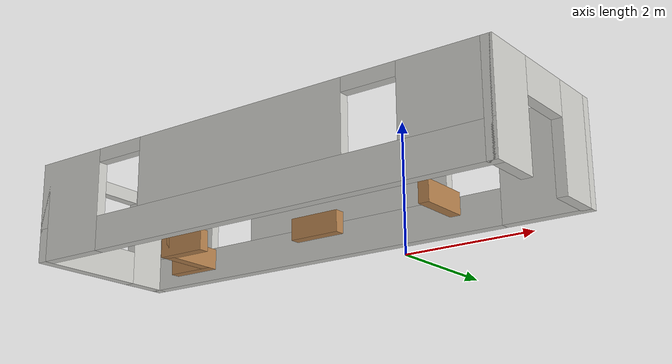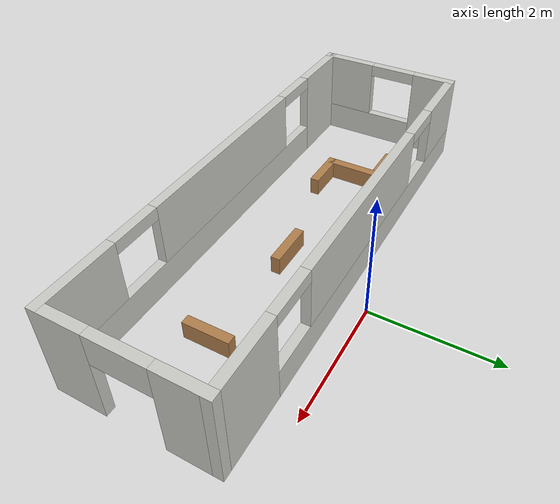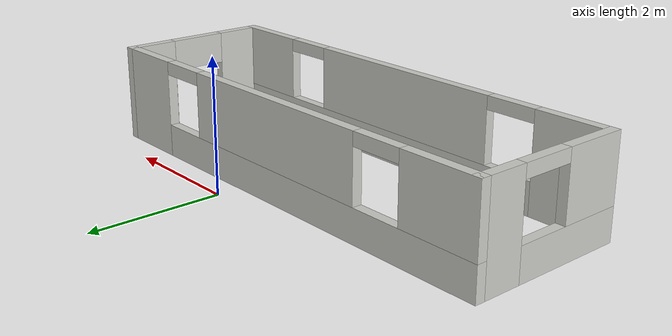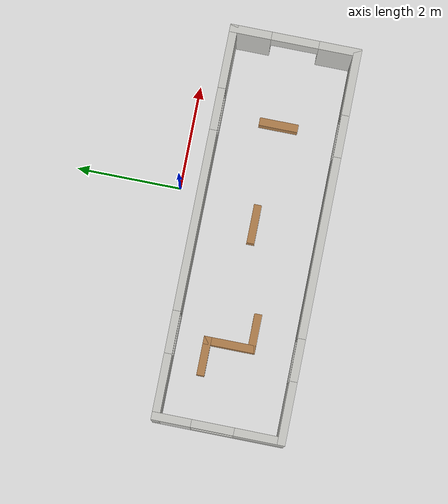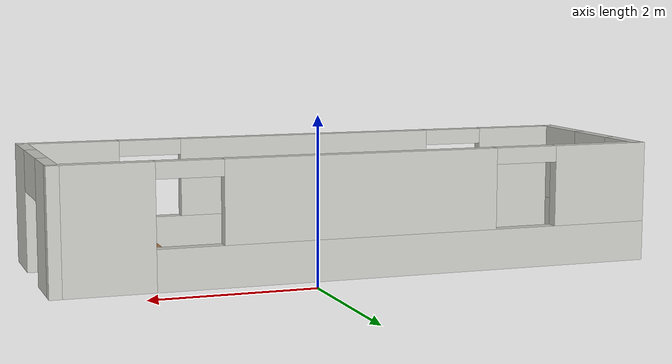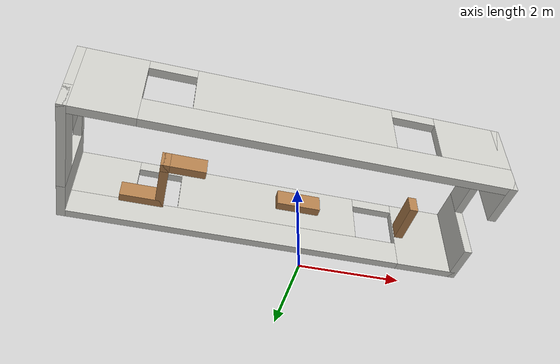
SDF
<?xml version='1.0'?>
<sdf version='1.6'>
  <model name='robot_world2'>
    <pose frame=''>-0.725 -1.615 0 0 -0 0</pose>
    <link name='Wall_0'>
      <pose frame=''>-3.675 0 0 0 -0 -1.5708</pose>
      <visual name='Wall_0_Visual_0'>
        <pose frame=''>-0.8825 0 0.75 0 -0 0</pose>
        <geometry>
          <box>
            <size>0.735 0.15 1.5</size>
          </box>
        </geometry>
        <material>
          <script>
            <uri>file://media/materials/scripts/gazebo.material</uri>
            <name>Gazebo/CeilingTiled</name>
          </script>
          <ambient>0 1 0 1</ambient>
        </material>
        <meta>
          <layer>0</layer>
        </meta>
      </visual>
      <collision name='Wall_0_Collision_0'>
        <geometry>
          <box>
            <size>0.735 0.15 1.5</size>
          </box>
        </geometry>
        <pose frame=''>-0.8825 0 0.75 0 -0 0</pose>
      </collision>
      <visual name='Wall_0_Visual_1'>
        <pose frame=''>0.3675 0 0.25 0 -0 0</pose>
        <geometry>
          <box>
            <size>1.765 0.15 0.5</size>
          </box>
        </geometry>
        <material>
          <script>
            <uri>file://media/materials/scripts/gazebo.material</uri>
            <name>Gazebo/CeilingTiled</name>
          </script>
          <ambient>0 1 0 1</ambient>
        </material>
        <meta>
          <layer>0</layer>
        </meta>
      </visual>
      <collision name='Wall_0_Collision_1'>
        <geometry>
          <box>
            <size>1.765 0.15 0.5</size>
          </box>
        </geometry>
        <pose frame=''>0.3675 0 0.25 0 -0 0</pose>
      </collision>
      <visual name='Wall_0_Visual_2'>
        <pose frame=''>0.7675 0 1 0 -0 0</pose>
        <geometry>
          <box>
            <size>0.965 0.15 1</size>
          </box>
        </geometry>
        <material>
          <script>
            <uri>file://media/materials/scripts/gazebo.material</uri>
            <name>Gazebo/CeilingTiled</name>
          </script>
          <ambient>0 1 0 1</ambient>
        </material>
        <meta>
          <layer>0</layer>
        </meta>
      </visual>
      <collision name='Wall_0_Collision_2'>
        <geometry>
          <box>
            <size>0.965 0.15 1</size>
          </box>
        </geometry>
        <pose frame=''>0.7675 0 1 0 -0 0</pose>
      </collision>
      <visual name='Wall_0_Visual_3'>
        <pose frame=''>-0.115 0 1.4 0 -0 0</pose>
        <geometry>
          <box>
            <size>0.8 0.15 0.2</size>
          </box>
        </geometry>
        <material>
          <script>
            <uri>file://media/materials/scripts/gazebo.material</uri>
            <name>Gazebo/CeilingTiled</name>
          </script>
          <ambient>0 1 0 1</ambient>
        </material>
        <meta>
          <layer>0</layer>
        </meta>
      </visual>
      <collision name='Wall_0_Collision_3'>
        <geometry>
          <box>
            <size>0.8 0.15 0.2</size>
          </box>
        </geometry>
        <pose frame=''>-0.115 0 1.4 0 -0 0</pose>
      </collision>
    </link>
    <link name='Wall_1'>
      <pose frame=''>0 -1.175 0 0 -0 0</pose>
      <visual name='Wall_1_Visual_0'>
        <pose frame=''>-3.1575 0 0.75 0 -0 0</pose>
        <geometry>
          <box>
            <size>1.185 0.15 1.5</size>
          </box>
        </geometry>
        <material>
          <script>
            <uri>file://media/materials/scripts/gazebo.material</uri>
            <name>Gazebo/CeilingTiled</name>
          </script>
          <ambient>0 1 0 1</ambient>
        </material>
        <meta>
          <layer>0</layer>
        </meta>
      </visual>
      <collision name='Wall_1_Collision_0'>
        <geometry>
          <box>
            <size>1.185 0.15 1.5</size>
          </box>
        </geometry>
        <pose frame=''>-3.1575 0 0.75 0 -0 0</pose>
      </collision>
      <visual name='Wall_1_Visual_1'>
        <pose frame=''>0.5925 0 0.25 0 -0 0</pose>
        <geometry>
          <box>
            <size>6.315 0.15 0.5</size>
          </box>
        </geometry>
        <material>
          <script>
            <uri>file://media/materials/scripts/gazebo.material</uri>
            <name>Gazebo/CeilingTiled</name>
          </script>
          <ambient>0 1 0 1</ambient>
        </material>
        <meta>
          <layer>0</layer>
        </meta>
      </visual>
      <collision name='Wall_1_Collision_1'>
        <geometry>
          <box>
            <size>6.315 0.15 0.5</size>
          </box>
        </geometry>
        <pose frame=''>0.5925 0 0.25 0 -0 0</pose>
      </collision>
      <visual name='Wall_1_Visual_2'>
        <pose frame=''>-0.05 0 1 0 -0 0</pose>
        <geometry>
          <box>
            <size>3.43 0.15 1</size>
          </box>
        </geometry>
        <material>
          <script>
            <uri>file://media/materials/scripts/gazebo.material</uri>
            <name>Gazebo/CeilingTiled</name>
          </script>
          <ambient>0 1 0 1</ambient>
        </material>
        <meta>
          <layer>0</layer>
        </meta>
      </visual>
      <collision name='Wall_1_Collision_2'>
        <geometry>
          <box>
            <size>3.43 0.15 1</size>
          </box>
        </geometry>
        <pose frame=''>-0.05 0 1 0 -0 0</pose>
      </collision>
      <visual name='Wall_1_Visual_3'>
        <pose frame=''>3.1075 0 1 0 -0 0</pose>
        <geometry>
          <box>
            <size>1.285 0.15 1</size>
          </box>
        </geometry>
        <material>
          <script>
            <uri>file://media/materials/scripts/gazebo.material</uri>
            <name>Gazebo/CeilingTiled</name>
          </script>
          <ambient>0 1 0 1</ambient>
        </material>
        <meta>
          <layer>0</layer>
        </meta>
      </visual>
      <collision name='Wall_1_Collision_3'>
        <geometry>
          <box>
            <size>1.285 0.15 1</size>
          </box>
        </geometry>
        <pose frame=''>3.1075 0 1 0 -0 0</pose>
      </collision>
      <visual name='Wall_1_Visual_4'>
        <pose frame=''>-2.165 0 1.4 0 -0 0</pose>
        <geometry>
          <box>
            <size>0.8 0.15 0.2</size>
          </box>
        </geometry>
        <material>
          <script>
            <uri>file://media/materials/scripts/gazebo.material</uri>
            <name>Gazebo/CeilingTiled</name>
          </script>
          <ambient>0 1 0 1</ambient>
        </material>
        <meta>
          <layer>0</layer>
        </meta>
      </visual>
      <collision name='Wall_1_Collision_4'>
        <geometry>
          <box>
            <size>0.8 0.15 0.2</size>
          </box>
        </geometry>
        <pose frame=''>-2.165 0 1.4 0 -0 0</pose>
      </collision>
      <visual name='Wall_1_Visual_5'>
        <pose frame=''>2.065 0 1.4 0 -0 0</pose>
        <geometry>
          <box>
            <size>0.8 0.15 0.2</size>
          </box>
        </geometry>
        <material>
          <script>
            <uri>file://media/materials/scripts/gazebo.material</uri>
            <name>Gazebo/CeilingTiled</name>
          </script>
          <ambient>0 1 0 1</ambient>
        </material>
        <meta>
          <layer>0</layer>
        </meta>
      </visual>
      <collision name='Wall_1_Collision_5'>
        <geometry>
          <box>
            <size>0.8 0.15 0.2</size>
          </box>
        </geometry>
        <pose frame=''>2.065 0 1.4 0 -0 0</pose>
      </collision>
    </link>
    <link name='Wall_11'>
      <collision name='Wall_11_Collision'>
        <geometry>
          <box>
            <size>0.75 0.15 0.3</size>
          </box>
        </geometry>
        <pose frame=''>0 0 0.15 0 -0 0</pose>
      </collision>
      <visual name='Wall_11_Visual'>
        <pose frame=''>0 0 0.15 0 -0 0</pose>
        <geometry>
          <box>
            <size>0.75 0.15 0.3</size>
          </box>
        </geometry>
        <material>
          <script>
            <uri>file://media/materials/scripts/gazebo.material</uri>
            <name>Gazebo/Wood</name>
          </script>
          <ambient>1 1 1 1</ambient>
        </material>
        <meta>
          <layer>0</layer>
        </meta>
      </visual>
      <pose frame=''>2.255 0.005 0 0 -0 -1.5708</pose>
    </link>
    <link name='Wall_2'>
      <pose frame=''>3.675 0 0 0 -0 1.5708</pose>
      <visual name='Wall_2_Visual_0'>
        <pose frame=''>-0.8475 0 0.75 0 -0 0</pose>
        <geometry>
          <box>
            <size>0.805 0.15 1.5</size>
          </box>
        </geometry>
        <material>
          <script>
            <uri>file://media/materials/scripts/gazebo.material</uri>
            <name>Gazebo/CeilingTiled</name>
          </script>
          <ambient>0 1 0 1</ambient>
        </material>
        <meta>
          <layer>0</layer>
        </meta>
      </visual>
      <collision name='Wall_2_Collision_0'>
        <geometry>
          <box>
            <size>0.805 0.15 1.5</size>
          </box>
        </geometry>
        <pose frame=''>-0.8475 0 0.75 0 -0 0</pose>
      </collision>
      <visual name='Wall_2_Visual_1'>
        <pose frame=''>0.8525 0 0.75 0 -0 0</pose>
        <geometry>
          <box>
            <size>0.795 0.15 1.5</size>
          </box>
        </geometry>
        <material>
          <script>
            <uri>file://media/materials/scripts/gazebo.material</uri>
            <name>Gazebo/CeilingTiled</name>
          </script>
          <ambient>0 1 0 1</ambient>
        </material>
        <meta>
          <layer>0</layer>
        </meta>
      </visual>
      <collision name='Wall_2_Collision_1'>
        <geometry>
          <box>
            <size>0.795 0.15 1.5</size>
          </box>
        </geometry>
        <pose frame=''>0.8525 0 0.75 0 -0 0</pose>
      </collision>
      <visual name='Wall_2_Visual_2'>
        <pose frame=''>0.005 0 1.25 0 -0 0</pose>
        <geometry>
          <box>
            <size>0.9 0.15 0.5</size>
          </box>
        </geometry>
        <material>
          <script>
            <uri>file://media/materials/scripts/gazebo.material</uri>
            <name>Gazebo/CeilingTiled</name>
          </script>
          <ambient>0 1 0 1</ambient>
        </material>
        <meta>
          <layer>0</layer>
        </meta>
      </visual>
      <collision name='Wall_2_Collision_2'>
        <geometry>
          <box>
            <size>0.9 0.15 0.5</size>
          </box>
        </geometry>
        <pose frame=''>0.005 0 1.25 0 -0 0</pose>
      </collision>
    </link>
    <link name='Wall_3'>
      <pose frame=''>0 1.175 0 0 -0 3.14159</pose>
      <visual name='Wall_3_Visual_0'>
        <pose frame=''>-3.1375 0 0.75 0 -0 0</pose>
        <geometry>
          <box>
            <size>1.225 0.15 1.5</size>
          </box>
        </geometry>
        <material>
          <script>
            <uri>file://media/materials/scripts/gazebo.material</uri>
            <name>Gazebo/CeilingTiled</name>
          </script>
          <ambient>0 1 0 1</ambient>
        </material>
        <meta>
          <layer>0</layer>
        </meta>
      </visual>
      <collision name='Wall_3_Collision_0'>
        <geometry>
          <box>
            <size>1.225 0.15 1.5</size>
          </box>
        </geometry>
        <pose frame=''>-3.1375 0 0.75 0 -0 0</pose>
      </collision>
      <visual name='Wall_3_Visual_1'>
        <pose frame=''>0.6125 0 0.25 0 -0 0</pose>
        <geometry>
          <box>
            <size>6.275 0.15 0.5</size>
          </box>
        </geometry>
        <material>
          <script>
            <uri>file://media/materials/scripts/gazebo.material</uri>
            <name>Gazebo/CeilingTiled</name>
          </script>
          <ambient>0 1 0 1</ambient>
        </material>
        <meta>
          <layer>0</layer>
        </meta>
      </visual>
      <collision name='Wall_3_Collision_1'>
        <geometry>
          <box>
            <size>6.275 0.15 0.5</size>
          </box>
        </geometry>
        <pose frame=''>0.6125 0 0.25 0 -0 0</pose>
      </collision>
      <visual name='Wall_3_Visual_2'>
        <pose frame=''>-0.01 0 1 0 -0 0</pose>
        <geometry>
          <box>
            <size>3.43 0.15 1</size>
          </box>
        </geometry>
        <material>
          <script>
            <uri>file://media/materials/scripts/gazebo.material</uri>
            <name>Gazebo/CeilingTiled</name>
          </script>
          <ambient>0 1 0 1</ambient>
        </material>
        <meta>
          <layer>0</layer>
        </meta>
      </visual>
      <collision name='Wall_3_Collision_2'>
        <geometry>
          <box>
            <size>3.43 0.15 1</size>
          </box>
        </geometry>
        <pose frame=''>-0.01 0 1 0 -0 0</pose>
      </collision>
      <visual name='Wall_3_Visual_3'>
        <pose frame=''>3.1275 0 1 0 -0 0</pose>
        <geometry>
          <box>
            <size>1.245 0.15 1</size>
          </box>
        </geometry>
        <material>
          <script>
            <uri>file://media/materials/scripts/gazebo.material</uri>
            <name>Gazebo/CeilingTiled</name>
          </script>
          <ambient>0 1 0 1</ambient>
        </material>
        <meta>
          <layer>0</layer>
        </meta>
      </visual>
      <collision name='Wall_3_Collision_3'>
        <geometry>
          <box>
            <size>1.245 0.15 1</size>
          </box>
        </geometry>
        <pose frame=''>3.1275 0 1 0 -0 0</pose>
      </collision>
      <visual name='Wall_3_Visual_4'>
        <pose frame=''>-2.125 0 1.4 0 -0 0</pose>
        <geometry>
          <box>
            <size>0.8 0.15 0.2</size>
          </box>
        </geometry>
        <material>
          <script>
            <uri>file://media/materials/scripts/gazebo.material</uri>
            <name>Gazebo/CeilingTiled</name>
          </script>
          <ambient>0 1 0 1</ambient>
        </material>
        <meta>
          <layer>0</layer>
        </meta>
      </visual>
      <collision name='Wall_3_Collision_4'>
        <geometry>
          <box>
            <size>0.8 0.15 0.2</size>
          </box>
        </geometry>
        <pose frame=''>-2.125 0 1.4 0 -0 0</pose>
      </collision>
      <visual name='Wall_3_Visual_5'>
        <pose frame=''>2.105 0 1.4 0 -0 0</pose>
        <geometry>
          <box>
            <size>0.8 0.15 0.2</size>
          </box>
        </geometry>
        <material>
          <script>
            <uri>file://media/materials/scripts/gazebo.material</uri>
            <name>Gazebo/CeilingTiled</name>
          </script>
          <ambient>0 1 0 1</ambient>
        </material>
        <meta>
          <layer>0</layer>
        </meta>
      </visual>
      <collision name='Wall_3_Collision_5'>
        <geometry>
          <box>
            <size>0.8 0.15 0.2</size>
          </box>
        </geometry>
        <pose frame=''>2.105 0 1.4 0 -0 0</pose>
      </collision>
    </link>
    <link name='Wall_5'>
      <collision name='Wall_5_Collision'>
        <geometry>
          <box>
            <size>0.75 0.15 0.3</size>
          </box>
        </geometry>
        <pose frame=''>0 0 0.15 0 -0 0</pose>
      </collision>
      <visual name='Wall_5_Visual'>
        <pose frame=''>0 0 0.15 0 -0 0</pose>
        <geometry>
          <box>
            <size>0.75 0.15 0.3</size>
          </box>
        </geometry>
        <material>
          <script>
            <uri>file://media/materials/scripts/gazebo.material</uri>
            <name>Gazebo/Wood</name>
          </script>
          <ambient>1 1 1 1</ambient>
        </material>
        <meta>
          <layer>0</layer>
        </meta>
      </visual>
      <pose frame=''>-2.345 0.535 0 0 -0 0</pose>
    </link>
    <link name='Wall_6'>
      <collision name='Wall_6_Collision'>
        <geometry>
          <box>
            <size>1 0.15 0.3</size>
          </box>
        </geometry>
        <pose frame=''>0 0 0.15 0 -0 0</pose>
      </collision>
      <visual name='Wall_6_Visual'>
        <pose frame=''>0 0 0.15 0 -0 0</pose>
        <geometry>
          <box>
            <size>1 0.15 0.3</size>
          </box>
        </geometry>
        <material>
          <script>
            <uri>file://media/materials/scripts/gazebo.material</uri>
            <name>Gazebo/Wood</name>
          </script>
          <ambient>1 1 1 1</ambient>
        </material>
        <meta>
          <layer>0</layer>
        </meta>
      </visual>
      <pose frame=''>-2.045 0.11 0 0 -0 -1.5708</pose>
    </link>
    <link name='Wall_7'>
      <collision name='Wall_7_Collision'>
        <geometry>
          <box>
            <size>0.75 0.15 0.3</size>
          </box>
        </geometry>
        <pose frame=''>0 0 0.15 0 -0 0</pose>
      </collision>
      <visual name='Wall_7_Visual'>
        <pose frame=''>0 0 0.15 0 -0 0</pose>
        <geometry>
          <box>
            <size>0.75 0.15 0.3</size>
          </box>
        </geometry>
        <material>
          <script>
            <uri>file://media/materials/scripts/gazebo.material</uri>
            <name>Gazebo/Wood</name>
          </script>
          <ambient>1 1 1 1</ambient>
        </material>
        <meta>
          <layer>0</layer>
        </meta>
      </visual>
      <pose frame=''>-1.745 -0.315 0 0 -0 0</pose>
    </link>
    <link name='Wall_9'>
      <collision name='Wall_9_Collision'>
        <geometry>
          <box>
            <size>0.75 0.15 0.3</size>
          </box>
        </geometry>
        <pose frame=''>0 0 0.15 0 -0 0</pose>
      </collision>
      <visual name='Wall_9_Visual'>
        <pose frame=''>0 0 0.15 0 -0 0</pose>
        <geometry>
          <box>
            <size>0.75 0.15 0.3</size>
          </box>
        </geometry>
        <material>
          <script>
            <uri>file://media/materials/scripts/gazebo.material</uri>
            <name>Gazebo/Wood</name>
          </script>
          <ambient>1 1 1 1</ambient>
        </material>
        <meta>
          <layer>0</layer>
        </meta>
      </visual>
      <pose frame=''>0.295 0.095 0 0 -0 0</pose>
    </link>
    <static>1</static>
  </model>
</sdf>
